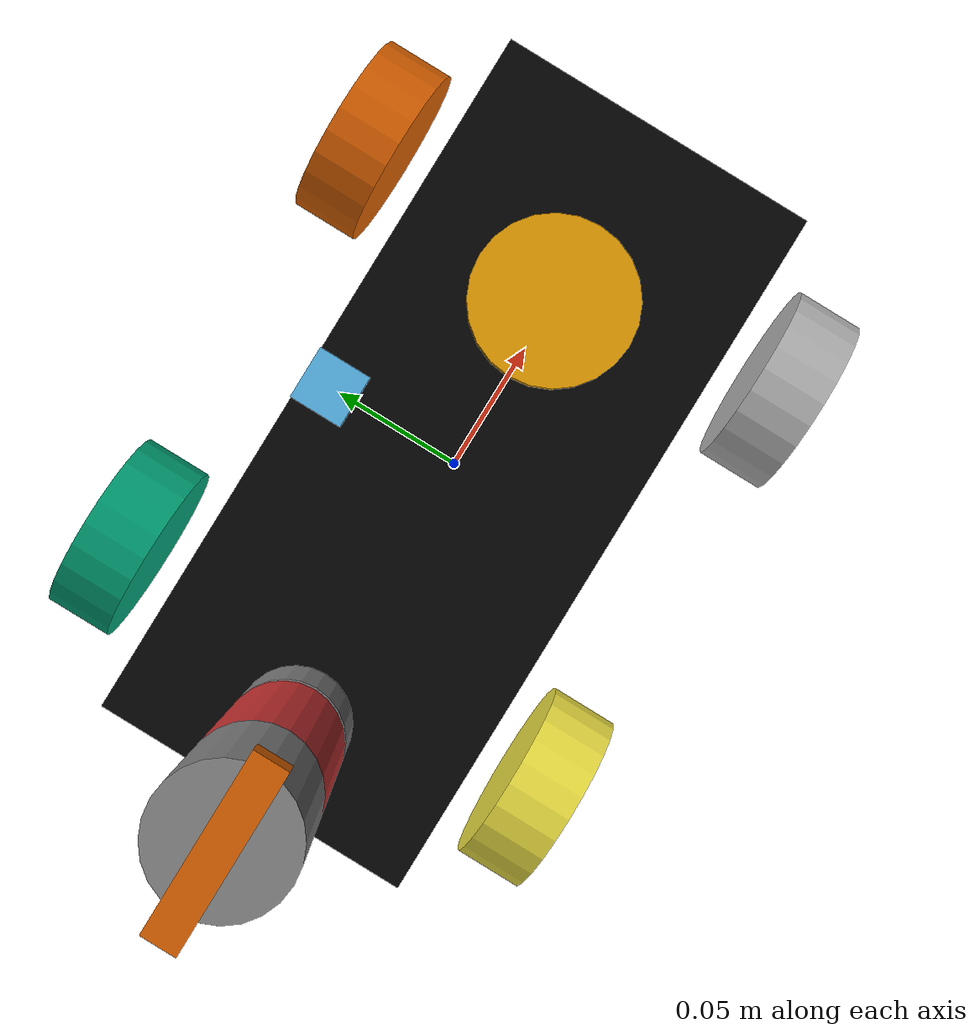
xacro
<?xml version="1.0"?>
<robot xmlns:xacro="http://www.ros.org/wiki/xacro" name="ackermann_arm_rover">
    <xacro:arg name="initial_positions_file" default="initial_positions.yaml" />

    <!-- Import ackermann_arm_rover urdf file -->
    <xacro:include filename="$(find pincer_gripper_description)/urdf/pincer.urdf.xacro" />

    <!-- Import control_xacro -->
    <xacro:include filename="ackermann_arm_rover.ros2_control.xacro" />

    <xacro:ackermann_arm_rover_ros2_control name="FakeSystem" initial_positions_file="$(arg initial_positions_file)"/>

</robot>

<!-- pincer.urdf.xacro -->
<robot name="ackermann_arm_rover" xmlns:xacro="http://www.ros.org/wiki/xacro">

  <!-- PARAMETERS -->

  <xacro:property name="wheel_radius" value="0.035"/>
  <xacro:property name="wheel_width" value="0.025"/>

  <xacro:property name="wheel_base" value="0.173"/>
  <xacro:property name="track_width" value="0.177"/>

  <xacro:property name="chassis_length" value="0.27"/>
  <xacro:property name="chassis_width" value="0.12"/>
  <xacro:property name="chassis_height" value="0.055"/>

  <!-- Colors -->
  <material name="red">
  <color rgba="0.1 0.1 0.1 1"/>
  </material>

  <material name="green">
    <color rgba="0.02 0.02 0.02 1"/>
  </material>

  <material name="blue">
    <color rgba="0.2 0.2 0.8 1"/>
  </material>

  <material name="black">
    <color rgba="0.8 0.5 0.1 1"/>
  </material>

  <material name="white">
    <color rgba="0.8 0.2 0.2 1"/>
  </material>

  <material name="grey">
  <color rgba="0.5 0.5 0.5 1"/>
  </material>

  <!-- ROOT LINK (required for KDL) -->

  <link name="base_footprint"/>

  <joint name="base_joint" type="fixed">
    <parent link="base_footprint"/>
    <child link="base_link"/>
  </joint>

  <!-- BASE LINK -->

  <link name="base_link">

    <visual>
      <geometry>
        <box size="${chassis_length} ${chassis_width} ${chassis_height}"/>
      </geometry>
      <origin xyz="0 0 ${chassis_height/2}"/>
      <material name="green"/>
    </visual>

    <collision>
      <geometry>
        <box size="${chassis_length} ${chassis_width} ${chassis_height}"/>
      </geometry>
      <origin xyz="0 0 ${chassis_height/2}"/>
    </collision>

    <inertial>
      <mass value="2.0"/>
      <origin xyz="0 0 0"/>
      <inertia ixx="0.01" iyy="0.01" izz="0.02"
               ixy="0" ixz="0" iyz="0"/>
    </inertial>

  </link>

  <!-- WHEEL MACRO -->

  <xacro:macro name="wheel" params="name parent x y">

    <link name="${name}_wheel">

      <visual>
        <geometry>
          <cylinder radius="${wheel_radius}" length="${wheel_width}"/>
        </geometry>
        <origin rpy="1.5707 0 0"/>
      </visual>

      <collision>
        <geometry>
          <cylinder radius="${wheel_radius}" length="${wheel_width}"/>
        </geometry>
        <origin rpy="1.5707 0 0"/>
      </collision>

      <inertial>
        <mass value="0.1"/>
        <inertia ixx="0.0001" iyy="0.0001" izz="0.0001"
                 ixy="0" ixz="0" iyz="0"/>
      </inertial>

    </link>

    <joint name="${name}_wheel_joint" type="continuous">
      <parent link="${parent}"/>
      <child link="${name}_wheel"/>
      <origin xyz="${x} ${y} 0"/>
      <axis xyz="0 1 0"/>
    </joint>

  </xacro:macro>

  <!-- STEERING WHEEL MACRO -->

  <xacro:macro name="steering_wheel" params="name x y">

    <link name="${name}_steer_link">

      <visual>
        <geometry>
          <box size="0.02 0.02 0.02"/>
        </geometry>
      </visual>

      <collision>
        <geometry>
          <box size="0.02 0.02 0.02"/>
        </geometry>
      </collision>

    </link>

    <joint name="${name}_steer_joint" type="revolute">
      <parent link="base_link"/>
      <child link="${name}_steer_link"/>
      <origin xyz="${x} ${y} 0"/>
      <axis xyz="0 0 1"/>
      <limit lower="-0.6" upper="0.6" effort="10" velocity="1"/>
    </joint>

    <xacro:wheel name="${name}" parent="${name}_steer_link" x="0" y="0"/>

  </xacro:macro>

  <!-- REAR DRIVE WHEELS -->

  <xacro:wheel name="rear_left"
               parent="base_link"
               x="-${wheel_base/2}"
               y="${track_width/2}"/>

  <xacro:wheel name="rear_right"
               parent="base_link"
               x="-${wheel_base/2}"
               y="-${track_width/2}"/>

  <!-- FRONT STEERING WHEELS -->

  <xacro:steering_wheel name="front_left"
                        x="${wheel_base/2}"
                        y="${track_width/2}"/>

  <xacro:steering_wheel name="front_right"
                        x="${wheel_base/2}"
                        y="-${track_width/2}"/>

  <!-- LIDAR -->

  <link name="lidar_link">
    <visual>
      <geometry>
        <cylinder radius="0.03" length="0.02"/>
      </geometry>
    </visual>

    <collision>
      <geometry>
        <cylinder radius="0.03" length="0.02"/>
      </geometry>
    </collision>
  </link>

  <joint name="lidar_joint" type="fixed">
    <parent link="base_link"/>
    <child link="lidar_link"/>
    <origin xyz="${chassis_length/2-0.07} 0 ${chassis_height}"/>
  </joint>

  <!-- IMU -->

  <link name="imu_link">
    <visual>
      <geometry>
        <box size="0.02 0.02 0.01"/>
      </geometry>
    </visual>

    <collision>
      <geometry>
        <box size="0.02 0.02 0.01"/>
      </geometry>
    </collision>
  </link>

  <joint name="imu_joint" type="fixed">
    <parent link="base_link"/>
    <child link="imu_link"/>
    <origin xyz="0 0.05 ${chassis_height}"/>
  </joint>

  <!-- ARM BASE -->

  <link name="waist_link">
    <visual>
      <geometry>
        <cylinder radius="0.02" length="0.09"/>
      </geometry>
      <material name="grey"/>
    </visual>

    <collision>
      <geometry>
        <cylinder radius="0.02" length="0.09"/>
      </geometry>
    </collision>
  </link>

  <joint name="waist_joint" type="revolute">
    <parent link="base_link"/>
    <child link="waist_link"/>
    <origin xyz="-${chassis_length/2-0.03} 0 ${chassis_height}" rpy="0 0 3.1416"/>
    <axis xyz="0 0 1"/>
    <limit lower="-3.14" upper="3.14" effort="20" velocity="1"/>
  </joint>

  <!-- SHOULDER -->

  <link name="shoulder_link">

    <visual>
      <geometry>
        <cylinder radius="0.02" length="0.1"/>
      </geometry>
      <origin xyz="0 0 0.05"/>
      <material name="white"/>
    </visual>

    <collision>
      <geometry>
        <cylinder radius="0.02" length="0.1"/>
      </geometry>
      <origin xyz="0 0 0.05"/>
    </collision>

  </link>

  <joint name="shoulder_joint" type="revolute">
    <parent link="waist_link"/>
    <child link="shoulder_link"/>
    <origin xyz="0 0 0.05"/>
    <axis xyz="0 1 0"/>
    <limit lower="-1.5" upper="1.5" effort="20" velocity="1"/>
  </joint>

  <!-- WRIST -->

  <link name="wrist_link">

    <visual>
      <geometry>
        <cylinder radius="0.02" length="0.07"/>
      </geometry>
      <origin xyz="0 0 0.035"/>
      <material name="grey"/>
    </visual>

    <collision>
      <geometry>
        <cylinder radius="0.02" length="0.07"/>
      </geometry>
      <origin xyz="0 0 0.035"/>
    </collision>

  </link>

  <joint name="wrist_joint" type="revolute">
    <parent link="shoulder_link"/>
    <child link="wrist_link"/>
    <origin xyz="0 0 0.1"/>
    <axis xyz="0 1 0"/>
    <limit lower="-1" upper="2.1" effort="10" velocity="1"/>
  </joint>

  <!-- GRIPPER -->

  <link name="gripper_base">
    <visual>
      <geometry>
        <box size="0.05 0.01 0.01"/>
      </geometry>
    </visual>

    <collision>
      <geometry>
        <box size="0.05 0.01 0.01"/>
      </geometry>
    </collision>
  </link>

  <joint name="gripper_joint" type="fixed">
    <parent link="wrist_link"/>
    <child link="gripper_base"/>
    <origin xyz="0 0 0.08"/>
  </joint>

</robot>
